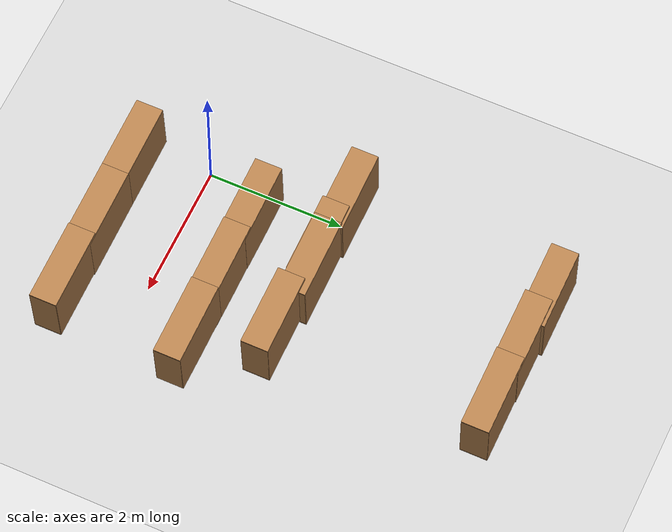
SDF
<sdf version="1.7">
 <world name="default">
  <model name="ground_plane">
   <static>1</static>
   <link name="link">
    <collision name="collision">
     <geometry><plane><normal>0 0 1</normal><size>100 100</size></plane></geometry>
     <surface>
      <contact><collide_bitmask>65535</collide_bitmask></contact>
      <friction><ode><mu>100</mu><mu2>50</mu2></ode></friction>
     </surface>
    </collision>
    <visual name="visual">
     <cast_shadows>0</cast_shadows>
     <geometry><plane><normal>0 0 1</normal><size>100 100</size></plane></geometry>
     <material>
      <script><uri>file://media/materials/scripts/gazebo.material</uri><name>Gazebo/Grey</name></script>
     </material>
    </visual>
   </link>
  </model>
  <model name="bookshelf">
   <static>1</static>
   <link name="link">
    <inertial><mass>1</mass></inertial>
    <collision name="back">
     <pose>0 0.005 0.6 0 -0 0</pose>
     <geometry><box><size>0.9 0.01 1.2</size></box></geometry>
    </collision>
    <visual name="visual1">
     <pose>0 0.005 0.6 0 -0 0</pose>
     <geometry><box><size>0.9 0.01 1.2</size></box></geometry>
     <material>
      <script><uri>file://media/materials/scripts/gazebo.material</uri><name>Gazebo/Wood</name></script>
     </material>
    </visual>
    <collision name="left_side">
     <pose>0.45 -0.195 0.6 0 -0 0</pose>
     <geometry><box><size>0.02 0.4 1.2</size></box></geometry>
    </collision>
    <visual name="visual2">
     <pose>0.45 -0.195 0.6 0 -0 0</pose>
     <geometry><box><size>0.02 0.4 1.2</size></box></geometry>
     <material>
      <script><uri>file://media/materials/scripts/gazebo.material</uri><name>Gazebo/Wood</name></script>
     </material>
    </visual>
    <collision name="right_side">
     <pose>-0.45 -0.195 0.6 0 -0 0</pose>
     <geometry><box><size>0.02 0.4 1.2</size></box></geometry>
    </collision>
    <visual name="visual3">
     <pose>-0.45 -0.195 0.6 0 -0 0</pose>
     <geometry><box><size>0.02 0.4 1.2</size></box></geometry>
     <material>
      <script><uri>file://media/materials/scripts/gazebo.material</uri><name>Gazebo/Wood</name></script>
     </material>
    </visual>
    <collision name="bottom">
     <pose>0 -0.195 0.03 0 -0 0</pose>
     <geometry><box><size>0.88 0.4 0.06</size></box></geometry>
    </collision>
    <visual name="visual4">
     <pose>0 -0.195 0.03 0 -0 0</pose>
     <geometry><box><size>0.88 0.4 0.06</size></box></geometry>
     <material>
      <script><uri>file://media/materials/scripts/gazebo.material</uri><name>Gazebo/Wood</name></script>
     </material>
    </visual>
    <collision name="top">
     <pose>0 -0.195 1.19 0 -0 0</pose>
     <geometry><box><size>0.88 0.4 0.02</size></box></geometry>
    </collision>
    <visual name="visual5">
     <pose>0 -0.195 1.19 0 -0 0</pose>
     <geometry><box><size>0.88 0.4 0.02</size></box></geometry>
     <material>
      <script><uri>file://media/materials/scripts/gazebo.material</uri><name>Gazebo/Wood</name></script>
     </material>
    </visual>
    <collision name="low_shelf">
     <pose>0 -0.195 0.43 0 -0 0</pose>
     <geometry><box><size>0.88 0.4 0.02</size></box></geometry>
    </collision>
    <visual name="visual6">
     <pose>0 -0.195 0.43 0 -0 0</pose>
     <geometry><box><size>0.88 0.4 0.02</size></box></geometry>
     <material>
      <script><uri>file://media/materials/scripts/gazebo.material</uri><name>Gazebo/Wood</name></script>
     </material>
    </visual>
    <collision name="high_shelf">
     <pose>0 -0.195 0.8 0 -0 0</pose>
     <geometry><box><size>0.88 0.4 0.02</size></box></geometry>
    </collision>
    <visual name="visual7">
     <pose>0 -0.195 0.8 0 -0 0</pose>
     <geometry><box><size>0.88 0.4 0.02</size></box></geometry>
     <material>
      <script><uri>file://media/materials/scripts/gazebo.material</uri><name>Gazebo/Wood</name></script>
     </material>
    </visual>
   </link>
   <pose>-0.039939 1.08937 0.469198 3.1373 1.52729 3.13696</pose>
  </model>
  <model name="bookshelf_clone_0">
   <static>1</static>
   <link name="link">
    <inertial><mass>1</mass></inertial>
    <collision name="back">
     <pose>0 0.005 0.6 0 -0 0</pose>
     <geometry><box><size>0.9 0.01 1.2</size></box></geometry>
    </collision>
    <visual name="visual1">
     <pose>0 0.005 0.6 0 -0 0</pose>
     <geometry><box><size>0.9 0.01 1.2</size></box></geometry>
     <material>
      <script><uri>file://media/materials/scripts/gazebo.material</uri><name>Gazebo/Wood</name></script>
     </material>
    </visual>
    <collision name="left_side">
     <pose>0.45 -0.195 0.6 0 -0 0</pose>
     <geometry><box><size>0.02 0.4 1.2</size></box></geometry>
    </collision>
    <visual name="visual2">
     <pose>0.45 -0.195 0.6 0 -0 0</pose>
     <geometry><box><size>0.02 0.4 1.2</size></box></geometry>
     <material>
      <script><uri>file://media/materials/scripts/gazebo.material</uri><name>Gazebo/Wood</name></script>
     </material>
    </visual>
    <collision name="right_side">
     <pose>-0.45 -0.195 0.6 0 -0 0</pose>
     <geometry><box><size>0.02 0.4 1.2</size></box></geometry>
    </collision>
    <visual name="visual3">
     <pose>-0.45 -0.195 0.6 0 -0 0</pose>
     <geometry><box><size>0.02 0.4 1.2</size></box></geometry>
     <material>
      <script><uri>file://media/materials/scripts/gazebo.material</uri><name>Gazebo/Wood</name></script>
     </material>
    </visual>
    <collision name="bottom">
     <pose>0 -0.195 0.03 0 -0 0</pose>
     <geometry><box><size>0.88 0.4 0.06</size></box></geometry>
    </collision>
    <visual name="visual4">
     <pose>0 -0.195 0.03 0 -0 0</pose>
     <geometry><box><size>0.88 0.4 0.06</size></box></geometry>
     <material>
      <script><uri>file://media/materials/scripts/gazebo.material</uri><name>Gazebo/Wood</name></script>
     </material>
    </visual>
    <collision name="top">
     <pose>0 -0.195 1.19 0 -0 0</pose>
     <geometry><box><size>0.88 0.4 0.02</size></box></geometry>
    </collision>
    <visual name="visual5">
     <pose>0 -0.195 1.19 0 -0 0</pose>
     <geometry><box><size>0.88 0.4 0.02</size></box></geometry>
     <material>
      <script><uri>file://media/materials/scripts/gazebo.material</uri><name>Gazebo/Wood</name></script>
     </material>
    </visual>
    <collision name="low_shelf">
     <pose>0 -0.195 0.43 0 -0 0</pose>
     <geometry><box><size>0.88 0.4 0.02</size></box></geometry>
    </collision>
    <visual name="visual6">
     <pose>0 -0.195 0.43 0 -0 0</pose>
     <geometry><box><size>0.88 0.4 0.02</size></box></geometry>
     <material>
      <script><uri>file://media/materials/scripts/gazebo.material</uri><name>Gazebo/Wood</name></script>
     </material>
    </visual>
    <collision name="high_shelf">
     <pose>0 -0.195 0.8 0 -0 0</pose>
     <geometry><box><size>0.88 0.4 0.02</size></box></geometry>
    </collision>
    <visual name="visual7">
     <pose>0 -0.195 0.8 0 -0 0</pose>
     <geometry><box><size>0.88 0.4 0.02</size></box></geometry>
     <material>
      <script><uri>file://media/materials/scripts/gazebo.material</uri><name>Gazebo/Wood</name></script>
     </material>
    </visual>
   </link>
   <pose>0.971842 1.08817 0.469198 3.1373 1.52729 3.13696</pose>
  </model>
  <model name="bookshelf_clone_1">
   <static>1</static>
   <link name="link">
    <inertial><mass>1</mass></inertial>
    <collision name="back">
     <pose>0 0.005 0.6 0 -0 0</pose>
     <geometry><box><size>0.9 0.01 1.2</size></box></geometry>
    </collision>
    <visual name="visual1">
     <pose>0 0.005 0.6 0 -0 0</pose>
     <geometry><box><size>0.9 0.01 1.2</size></box></geometry>
     <material>
      <script><uri>file://media/materials/scripts/gazebo.material</uri><name>Gazebo/Wood</name></script>
     </material>
    </visual>
    <collision name="left_side">
     <pose>0.45 -0.195 0.6 0 -0 0</pose>
     <geometry><box><size>0.02 0.4 1.2</size></box></geometry>
    </collision>
    <visual name="visual2">
     <pose>0.45 -0.195 0.6 0 -0 0</pose>
     <geometry><box><size>0.02 0.4 1.2</size></box></geometry>
     <material>
      <script><uri>file://media/materials/scripts/gazebo.material</uri><name>Gazebo/Wood</name></script>
     </material>
    </visual>
    <collision name="right_side">
     <pose>-0.45 -0.195 0.6 0 -0 0</pose>
     <geometry><box><size>0.02 0.4 1.2</size></box></geometry>
    </collision>
    <visual name="visual3">
     <pose>-0.45 -0.195 0.6 0 -0 0</pose>
     <geometry><box><size>0.02 0.4 1.2</size></box></geometry>
     <material>
      <script><uri>file://media/materials/scripts/gazebo.material</uri><name>Gazebo/Wood</name></script>
     </material>
    </visual>
    <collision name="bottom">
     <pose>0 -0.195 0.03 0 -0 0</pose>
     <geometry><box><size>0.88 0.4 0.06</size></box></geometry>
    </collision>
    <visual name="visual4">
     <pose>0 -0.195 0.03 0 -0 0</pose>
     <geometry><box><size>0.88 0.4 0.06</size></box></geometry>
     <material>
      <script><uri>file://media/materials/scripts/gazebo.material</uri><name>Gazebo/Wood</name></script>
     </material>
    </visual>
    <collision name="top">
     <pose>0 -0.195 1.19 0 -0 0</pose>
     <geometry><box><size>0.88 0.4 0.02</size></box></geometry>
    </collision>
    <visual name="visual5">
     <pose>0 -0.195 1.19 0 -0 0</pose>
     <geometry><box><size>0.88 0.4 0.02</size></box></geometry>
     <material>
      <script><uri>file://media/materials/scripts/gazebo.material</uri><name>Gazebo/Wood</name></script>
     </material>
    </visual>
    <collision name="low_shelf">
     <pose>0 -0.195 0.43 0 -0 0</pose>
     <geometry><box><size>0.88 0.4 0.02</size></box></geometry>
    </collision>
    <visual name="visual6">
     <pose>0 -0.195 0.43 0 -0 0</pose>
     <geometry><box><size>0.88 0.4 0.02</size></box></geometry>
     <material>
      <script><uri>file://media/materials/scripts/gazebo.material</uri><name>Gazebo/Wood</name></script>
     </material>
    </visual>
    <collision name="high_shelf">
     <pose>0 -0.195 0.8 0 -0 0</pose>
     <geometry><box><size>0.88 0.4 0.02</size></box></geometry>
    </collision>
    <visual name="visual7">
     <pose>0 -0.195 0.8 0 -0 0</pose>
     <geometry><box><size>0.88 0.4 0.02</size></box></geometry>
     <material>
      <script><uri>file://media/materials/scripts/gazebo.material</uri><name>Gazebo/Wood</name></script>
     </material>
    </visual>
   </link>
   <pose>1.99977 1.08853 0.469198 3.1373 1.52729 3.13696</pose>
  </model>
  <model name="bookshelf_clone_clone_clone">
   <static>1</static>
   <link name="link">
    <inertial><mass>1</mass></inertial>
    <collision name="back">
     <pose>0 0.005 0.6 0 -0 0</pose>
     <geometry><box><size>0.9 0.01 1.2</size></box></geometry>
    </collision>
    <visual name="visual1">
     <pose>0 0.005 0.6 0 -0 0</pose>
     <geometry><box><size>0.9 0.01 1.2</size></box></geometry>
     <material>
      <script><uri>file://media/materials/scripts/gazebo.material</uri><name>Gazebo/Wood</name></script>
     </material>
    </visual>
    <collision name="left_side">
     <pose>0.45 -0.195 0.6 0 -0 0</pose>
     <geometry><box><size>0.02 0.4 1.2</size></box></geometry>
    </collision>
    <visual name="visual2">
     <pose>0.45 -0.195 0.6 0 -0 0</pose>
     <geometry><box><size>0.02 0.4 1.2</size></box></geometry>
     <material>
      <script><uri>file://media/materials/scripts/gazebo.material</uri><name>Gazebo/Wood</name></script>
     </material>
    </visual>
    <collision name="right_side">
     <pose>-0.45 -0.195 0.6 0 -0 0</pose>
     <geometry><box><size>0.02 0.4 1.2</size></box></geometry>
    </collision>
    <visual name="visual3">
     <pose>-0.45 -0.195 0.6 0 -0 0</pose>
     <geometry><box><size>0.02 0.4 1.2</size></box></geometry>
     <material>
      <script><uri>file://media/materials/scripts/gazebo.material</uri><name>Gazebo/Wood</name></script>
     </material>
    </visual>
    <collision name="bottom">
     <pose>0 -0.195 0.03 0 -0 0</pose>
     <geometry><box><size>0.88 0.4 0.06</size></box></geometry>
    </collision>
    <visual name="visual4">
     <pose>0 -0.195 0.03 0 -0 0</pose>
     <geometry><box><size>0.88 0.4 0.06</size></box></geometry>
     <material>
      <script><uri>file://media/materials/scripts/gazebo.material</uri><name>Gazebo/Wood</name></script>
     </material>
    </visual>
    <collision name="top">
     <pose>0 -0.195 1.19 0 -0 0</pose>
     <geometry><box><size>0.88 0.4 0.02</size></box></geometry>
    </collision>
    <visual name="visual5">
     <pose>0 -0.195 1.19 0 -0 0</pose>
     <geometry><box><size>0.88 0.4 0.02</size></box></geometry>
     <material>
      <script><uri>file://media/materials/scripts/gazebo.material</uri><name>Gazebo/Wood</name></script>
     </material>
    </visual>
    <collision name="low_shelf">
     <pose>0 -0.195 0.43 0 -0 0</pose>
     <geometry><box><size>0.88 0.4 0.02</size></box></geometry>
    </collision>
    <visual name="visual6">
     <pose>0 -0.195 0.43 0 -0 0</pose>
     <geometry><box><size>0.88 0.4 0.02</size></box></geometry>
     <material>
      <script><uri>file://media/materials/scripts/gazebo.material</uri><name>Gazebo/Wood</name></script>
     </material>
    </visual>
    <collision name="high_shelf">
     <pose>0 -0.195 0.8 0 -0 0</pose>
     <geometry><box><size>0.88 0.4 0.02</size></box></geometry>
    </collision>
    <visual name="visual7">
     <pose>0 -0.195 0.8 0 -0 0</pose>
     <geometry><box><size>0.88 0.4 0.02</size></box></geometry>
     <material>
      <script><uri>file://media/materials/scripts/gazebo.material</uri><name>Gazebo/Wood</name></script>
     </material>
    </visual>
   </link>
   <pose>-0.171859 -0.788269 0.531222 3.1373 1.52729 3.13696</pose>
  </model>
  <model name="bookshelf_clone_clone_clone_0">
   <static>1</static>
   <link name="link">
    <inertial><mass>1</mass></inertial>
    <collision name="back">
     <pose>0 0.005 0.6 0 -0 0</pose>
     <geometry><box><size>0.9 0.01 1.2</size></box></geometry>
    </collision>
    <visual name="visual1">
     <pose>0 0.005 0.6 0 -0 0</pose>
     <geometry><box><size>0.9 0.01 1.2</size></box></geometry>
     <material>
      <script><uri>file://media/materials/scripts/gazebo.material</uri><name>Gazebo/Wood</name></script>
     </material>
    </visual>
    <collision name="left_side">
     <pose>0.45 -0.195 0.6 0 -0 0</pose>
     <geometry><box><size>0.02 0.4 1.2</size></box></geometry>
    </collision>
    <visual name="visual2">
     <pose>0.45 -0.195 0.6 0 -0 0</pose>
     <geometry><box><size>0.02 0.4 1.2</size></box></geometry>
     <material>
      <script><uri>file://media/materials/scripts/gazebo.material</uri><name>Gazebo/Wood</name></script>
     </material>
    </visual>
    <collision name="right_side">
     <pose>-0.45 -0.195 0.6 0 -0 0</pose>
     <geometry><box><size>0.02 0.4 1.2</size></box></geometry>
    </collision>
    <visual name="visual3">
     <pose>-0.45 -0.195 0.6 0 -0 0</pose>
     <geometry><box><size>0.02 0.4 1.2</size></box></geometry>
     <material>
      <script><uri>file://media/materials/scripts/gazebo.material</uri><name>Gazebo/Wood</name></script>
     </material>
    </visual>
    <collision name="bottom">
     <pose>0 -0.195 0.03 0 -0 0</pose>
     <geometry><box><size>0.88 0.4 0.06</size></box></geometry>
    </collision>
    <visual name="visual4">
     <pose>0 -0.195 0.03 0 -0 0</pose>
     <geometry><box><size>0.88 0.4 0.06</size></box></geometry>
     <material>
      <script><uri>file://media/materials/scripts/gazebo.material</uri><name>Gazebo/Wood</name></script>
     </material>
    </visual>
    <collision name="top">
     <pose>0 -0.195 1.19 0 -0 0</pose>
     <geometry><box><size>0.88 0.4 0.02</size></box></geometry>
    </collision>
    <visual name="visual5">
     <pose>0 -0.195 1.19 0 -0 0</pose>
     <geometry><box><size>0.88 0.4 0.02</size></box></geometry>
     <material>
      <script><uri>file://media/materials/scripts/gazebo.material</uri><name>Gazebo/Wood</name></script>
     </material>
    </visual>
    <collision name="low_shelf">
     <pose>0 -0.195 0.43 0 -0 0</pose>
     <geometry><box><size>0.88 0.4 0.02</size></box></geometry>
    </collision>
    <visual name="visual6">
     <pose>0 -0.195 0.43 0 -0 0</pose>
     <geometry><box><size>0.88 0.4 0.02</size></box></geometry>
     <material>
      <script><uri>file://media/materials/scripts/gazebo.material</uri><name>Gazebo/Wood</name></script>
     </material>
    </visual>
    <collision name="high_shelf">
     <pose>0 -0.195 0.8 0 -0 0</pose>
     <geometry><box><size>0.88 0.4 0.02</size></box></geometry>
    </collision>
    <visual name="visual7">
     <pose>0 -0.195 0.8 0 -0 0</pose>
     <geometry><box><size>0.88 0.4 0.02</size></box></geometry>
     <material>
      <script><uri>file://media/materials/scripts/gazebo.material</uri><name>Gazebo/Wood</name></script>
     </material>
    </visual>
   </link>
   <pose>0.938619 -0.774846 0.531222 3.1373 1.52729 3.13696</pose>
  </model>
  <model name="bookshelf_clone_clone_clone_1">
   <static>1</static>
   <link name="link">
    <inertial><mass>1</mass></inertial>
    <collision name="back">
     <pose>0 0.005 0.6 0 -0 0</pose>
     <geometry><box><size>0.9 0.01 1.2</size></box></geometry>
    </collision>
    <visual name="visual1">
     <pose>0 0.005 0.6 0 -0 0</pose>
     <geometry><box><size>0.9 0.01 1.2</size></box></geometry>
     <material>
      <script><uri>file://media/materials/scripts/gazebo.material</uri><name>Gazebo/Wood</name></script>
     </material>
    </visual>
    <collision name="left_side">
     <pose>0.45 -0.195 0.6 0 -0 0</pose>
     <geometry><box><size>0.02 0.4 1.2</size></box></geometry>
    </collision>
    <visual name="visual2">
     <pose>0.45 -0.195 0.6 0 -0 0</pose>
     <geometry><box><size>0.02 0.4 1.2</size></box></geometry>
     <material>
      <script><uri>file://media/materials/scripts/gazebo.material</uri><name>Gazebo/Wood</name></script>
     </material>
    </visual>
    <collision name="right_side">
     <pose>-0.45 -0.195 0.6 0 -0 0</pose>
     <geometry><box><size>0.02 0.4 1.2</size></box></geometry>
    </collision>
    <visual name="visual3">
     <pose>-0.45 -0.195 0.6 0 -0 0</pose>
     <geometry><box><size>0.02 0.4 1.2</size></box></geometry>
     <material>
      <script><uri>file://media/materials/scripts/gazebo.material</uri><name>Gazebo/Wood</name></script>
     </material>
    </visual>
    <collision name="bottom">
     <pose>0 -0.195 0.03 0 -0 0</pose>
     <geometry><box><size>0.88 0.4 0.06</size></box></geometry>
    </collision>
    <visual name="visual4">
     <pose>0 -0.195 0.03 0 -0 0</pose>
     <geometry><box><size>0.88 0.4 0.06</size></box></geometry>
     <material>
      <script><uri>file://media/materials/scripts/gazebo.material</uri><name>Gazebo/Wood</name></script>
     </material>
    </visual>
    <collision name="top">
     <pose>0 -0.195 1.19 0 -0 0</pose>
     <geometry><box><size>0.88 0.4 0.02</size></box></geometry>
    </collision>
    <visual name="visual5">
     <pose>0 -0.195 1.19 0 -0 0</pose>
     <geometry><box><size>0.88 0.4 0.02</size></box></geometry>
     <material>
      <script><uri>file://media/materials/scripts/gazebo.material</uri><name>Gazebo/Wood</name></script>
     </material>
    </visual>
    <collision name="low_shelf">
     <pose>0 -0.195 0.43 0 -0 0</pose>
     <geometry><box><size>0.88 0.4 0.02</size></box></geometry>
    </collision>
    <visual name="visual6">
     <pose>0 -0.195 0.43 0 -0 0</pose>
     <geometry><box><size>0.88 0.4 0.02</size></box></geometry>
     <material>
      <script><uri>file://media/materials/scripts/gazebo.material</uri><name>Gazebo/Wood</name></script>
     </material>
    </visual>
    <collision name="high_shelf">
     <pose>0 -0.195 0.8 0 -0 0</pose>
     <geometry><box><size>0.88 0.4 0.02</size></box></geometry>
    </collision>
    <visual name="visual7">
     <pose>0 -0.195 0.8 0 -0 0</pose>
     <geometry><box><size>0.88 0.4 0.02</size></box></geometry>
     <material>
      <script><uri>file://media/materials/scripts/gazebo.material</uri><name>Gazebo/Wood</name></script>
     </material>
    </visual>
   </link>
   <pose>1.97036 -0.775682 0.531222 3.1373 1.52729 3.13696</pose>
  </model>
  <model name="bookshelf_clone_clone_clone_4_clone_5_clone_1">
   <static>1</static>
   <link name="link">
    <inertial><mass>1</mass></inertial>
    <collision name="back">
     <pose>0 0.005 0.6 0 -0 0</pose>
     <geometry><box><size>0.9 0.01 1.2</size></box></geometry>
    </collision>
    <visual name="visual1">
     <pose>0 0.005 0.6 0 -0 0</pose>
     <geometry><box><size>0.9 0.01 1.2</size></box></geometry>
     <material>
      <script><uri>file://media/materials/scripts/gazebo.material</uri><name>Gazebo/Wood</name></script>
     </material>
    </visual>
    <collision name="left_side">
     <pose>0.45 -0.195 0.6 0 -0 0</pose>
     <geometry><box><size>0.02 0.4 1.2</size></box></geometry>
    </collision>
    <visual name="visual2">
     <pose>0.45 -0.195 0.6 0 -0 0</pose>
     <geometry><box><size>0.02 0.4 1.2</size></box></geometry>
     <material>
      <script><uri>file://media/materials/scripts/gazebo.material</uri><name>Gazebo/Wood</name></script>
     </material>
    </visual>
    <collision name="right_side">
     <pose>-0.45 -0.195 0.6 0 -0 0</pose>
     <geometry><box><size>0.02 0.4 1.2</size></box></geometry>
    </collision>
    <visual name="visual3">
     <pose>-0.45 -0.195 0.6 0 -0 0</pose>
     <geometry><box><size>0.02 0.4 1.2</size></box></geometry>
     <material>
      <script><uri>file://media/materials/scripts/gazebo.material</uri><name>Gazebo/Wood</name></script>
     </material>
    </visual>
    <collision name="bottom">
     <pose>0 -0.195 0.03 0 -0 0</pose>
     <geometry><box><size>0.88 0.4 0.06</size></box></geometry>
    </collision>
    <visual name="visual4">
     <pose>0 -0.195 0.03 0 -0 0</pose>
     <geometry><box><size>0.88 0.4 0.06</size></box></geometry>
     <material>
      <script><uri>file://media/materials/scripts/gazebo.material</uri><name>Gazebo/Wood</name></script>
     </material>
    </visual>
    <collision name="top">
     <pose>0 -0.195 1.19 0 -0 0</pose>
     <geometry><box><size>0.88 0.4 0.02</size></box></geometry>
    </collision>
    <visual name="visual5">
     <pose>0 -0.195 1.19 0 -0 0</pose>
     <geometry><box><size>0.88 0.4 0.02</size></box></geometry>
     <material>
      <script><uri>file://media/materials/scripts/gazebo.material</uri><name>Gazebo/Wood</name></script>
     </material>
    </visual>
    <collision name="low_shelf">
     <pose>0 -0.195 0.43 0 -0 0</pose>
     <geometry><box><size>0.88 0.4 0.02</size></box></geometry>
    </collision>
    <visual name="visual6">
     <pose>0 -0.195 0.43 0 -0 0</pose>
     <geometry><box><size>0.88 0.4 0.02</size></box></geometry>
     <material>
      <script><uri>file://media/materials/scripts/gazebo.material</uri><name>Gazebo/Wood</name></script>
     </material>
    </visual>
    <collision name="high_shelf">
     <pose>0 -0.195 0.8 0 -0 0</pose>
     <geometry><box><size>0.88 0.4 0.02</size></box></geometry>
    </collision>
    <visual name="visual7">
     <pose>0 -0.195 0.8 0 -0 0</pose>
     <geometry><box><size>0.88 0.4 0.02</size></box></geometry>
     <material>
      <script><uri>file://media/materials/scripts/gazebo.material</uri><name>Gazebo/Wood</name></script>
     </material>
    </visual>
   </link>
   <pose>1.29215 5.26956 0.531222 3.1373 1.52729 3.13696</pose>
  </model>
  <model name="bookshelf_clone_clone_clone_4_clone_5_clone_2">
   <static>1</static>
   <link name="link">
    <inertial><mass>1</mass></inertial>
    <collision name="back">
     <pose>0 0.005 0.6 0 -0 0</pose>
     <geometry><box><size>0.9 0.01 1.2</size></box></geometry>
    </collision>
    <visual name="visual1">
     <pose>0 0.005 0.6 0 -0 0</pose>
     <geometry><box><size>0.9 0.01 1.2</size></box></geometry>
     <material>
      <script><uri>file://media/materials/scripts/gazebo.material</uri><name>Gazebo/Wood</name></script>
     </material>
    </visual>
    <collision name="left_side">
     <pose>0.45 -0.195 0.6 0 -0 0</pose>
     <geometry><box><size>0.02 0.4 1.2</size></box></geometry>
    </collision>
    <visual name="visual2">
     <pose>0.45 -0.195 0.6 0 -0 0</pose>
     <geometry><box><size>0.02 0.4 1.2</size></box></geometry>
     <material>
      <script><uri>file://media/materials/scripts/gazebo.material</uri><name>Gazebo/Wood</name></script>
     </material>
    </visual>
    <collision name="right_side">
     <pose>-0.45 -0.195 0.6 0 -0 0</pose>
     <geometry><box><size>0.02 0.4 1.2</size></box></geometry>
    </collision>
    <visual name="visual3">
     <pose>-0.45 -0.195 0.6 0 -0 0</pose>
     <geometry><box><size>0.02 0.4 1.2</size></box></geometry>
     <material>
      <script><uri>file://media/materials/scripts/gazebo.material</uri><name>Gazebo/Wood</name></script>
     </material>
    </visual>
    <collision name="bottom">
     <pose>0 -0.195 0.03 0 -0 0</pose>
     <geometry><box><size>0.88 0.4 0.06</size></box></geometry>
    </collision>
    <visual name="visual4">
     <pose>0 -0.195 0.03 0 -0 0</pose>
     <geometry><box><size>0.88 0.4 0.06</size></box></geometry>
     <material>
      <script><uri>file://media/materials/scripts/gazebo.material</uri><name>Gazebo/Wood</name></script>
     </material>
    </visual>
    <collision name="top">
     <pose>0 -0.195 1.19 0 -0 0</pose>
     <geometry><box><size>0.88 0.4 0.02</size></box></geometry>
    </collision>
    <visual name="visual5">
     <pose>0 -0.195 1.19 0 -0 0</pose>
     <geometry><box><size>0.88 0.4 0.02</size></box></geometry>
     <material>
      <script><uri>file://media/materials/scripts/gazebo.material</uri><name>Gazebo/Wood</name></script>
     </material>
    </visual>
    <collision name="low_shelf">
     <pose>0 -0.195 0.43 0 -0 0</pose>
     <geometry><box><size>0.88 0.4 0.02</size></box></geometry>
    </collision>
    <visual name="visual6">
     <pose>0 -0.195 0.43 0 -0 0</pose>
     <geometry><box><size>0.88 0.4 0.02</size></box></geometry>
     <material>
      <script><uri>file://media/materials/scripts/gazebo.material</uri><name>Gazebo/Wood</name></script>
     </material>
    </visual>
    <collision name="high_shelf">
     <pose>0 -0.195 0.8 0 -0 0</pose>
     <geometry><box><size>0.88 0.4 0.02</size></box></geometry>
    </collision>
    <visual name="visual7">
     <pose>0 -0.195 0.8 0 -0 0</pose>
     <geometry><box><size>0.88 0.4 0.02</size></box></geometry>
     <material>
      <script><uri>file://media/materials/scripts/gazebo.material</uri><name>Gazebo/Wood</name></script>
     </material>
    </visual>
   </link>
   <pose>0.330227 5.27536 0.531222 3.1373 1.52729 3.13696</pose>
  </model>
  <model name="bookshelf_clone_clone_clone_4_clone_5_clone_3">
   <static>1</static>
   <link name="link">
    <inertial><mass>1</mass></inertial>
    <collision name="back">
     <pose>0 0.005 0.6 0 -0 0</pose>
     <geometry><box><size>0.9 0.01 1.2</size></box></geometry>
    </collision>
    <visual name="visual1">
     <pose>0 0.005 0.6 0 -0 0</pose>
     <geometry><box><size>0.9 0.01 1.2</size></box></geometry>
     <material>
      <script><uri>file://media/materials/scripts/gazebo.material</uri><name>Gazebo/Wood</name></script>
     </material>
    </visual>
    <collision name="left_side">
     <pose>0.45 -0.195 0.6 0 -0 0</pose>
     <geometry><box><size>0.02 0.4 1.2</size></box></geometry>
    </collision>
    <visual name="visual2">
     <pose>0.45 -0.195 0.6 0 -0 0</pose>
     <geometry><box><size>0.02 0.4 1.2</size></box></geometry>
     <material>
      <script><uri>file://media/materials/scripts/gazebo.material</uri><name>Gazebo/Wood</name></script>
     </material>
    </visual>
    <collision name="right_side">
     <pose>-0.45 -0.195 0.6 0 -0 0</pose>
     <geometry><box><size>0.02 0.4 1.2</size></box></geometry>
    </collision>
    <visual name="visual3">
     <pose>-0.45 -0.195 0.6 0 -0 0</pose>
     <geometry><box><size>0.02 0.4 1.2</size></box></geometry>
     <material>
      <script><uri>file://media/materials/scripts/gazebo.material</uri><name>Gazebo/Wood</name></script>
     </material>
    </visual>
    <collision name="bottom">
     <pose>0 -0.195 0.03 0 -0 0</pose>
     <geometry><box><size>0.88 0.4 0.06</size></box></geometry>
    </collision>
    <visual name="visual4">
     <pose>0 -0.195 0.03 0 -0 0</pose>
     <geometry><box><size>0.88 0.4 0.06</size></box></geometry>
     <material>
      <script><uri>file://media/materials/scripts/gazebo.material</uri><name>Gazebo/Wood</name></script>
     </material>
    </visual>
    <collision name="top">
     <pose>0 -0.195 1.19 0 -0 0</pose>
     <geometry><box><size>0.88 0.4 0.02</size></box></geometry>
    </collision>
    <visual name="visual5">
     <pose>0 -0.195 1.19 0 -0 0</pose>
     <geometry><box><size>0.88 0.4 0.02</size></box></geometry>
     <material>
      <script><uri>file://media/materials/scripts/gazebo.material</uri><name>Gazebo/Wood</name></script>
     </material>
    </visual>
    <collision name="low_shelf">
     <pose>0 -0.195 0.43 0 -0 0</pose>
     <geometry><box><size>0.88 0.4 0.02</size></box></geometry>
    </collision>
    <visual name="visual6">
     <pose>0 -0.195 0.43 0 -0 0</pose>
     <geometry><box><size>0.88 0.4 0.02</size></box></geometry>
     <material>
      <script><uri>file://media/materials/scripts/gazebo.material</uri><name>Gazebo/Wood</name></script>
     </material>
    </visual>
    <collision name="high_shelf">
     <pose>0 -0.195 0.8 0 -0 0</pose>
     <geometry><box><size>0.88 0.4 0.02</size></box></geometry>
    </collision>
    <visual name="visual7">
     <pose>0 -0.195 0.8 0 -0 0</pose>
     <geometry><box><size>0.88 0.4 0.02</size></box></geometry>
     <material>
      <script><uri>file://media/materials/scripts/gazebo.material</uri><name>Gazebo/Wood</name></script>
     </material>
    </visual>
   </link>
   <pose>-0.474148 5.32165 0.531222 3.1373 1.52729 3.13696</pose>
  </model>
  <model name="bookshelf_clone_clone_clone_4_clone_5_clone_9">
   <static>1</static>
   <link name="link">
    <inertial><mass>1</mass></inertial>
    <collision name="back">
     <pose>0 0.005 0.6 0 -0 0</pose>
     <geometry><box><size>0.9 0.01 1.2</size></box></geometry>
    </collision>
    <visual name="visual1">
     <pose>0 0.005 0.6 0 -0 0</pose>
     <geometry><box><size>0.9 0.01 1.2</size></box></geometry>
     <material>
      <script><uri>file://media/materials/scripts/gazebo.material</uri><name>Gazebo/Wood</name></script>
     </material>
    </visual>
    <collision name="left_side">
     <pose>0.45 -0.195 0.6 0 -0 0</pose>
     <geometry><box><size>0.02 0.4 1.2</size></box></geometry>
    </collision>
    <visual name="visual2">
     <pose>0.45 -0.195 0.6 0 -0 0</pose>
     <geometry><box><size>0.02 0.4 1.2</size></box></geometry>
     <material>
      <script><uri>file://media/materials/scripts/gazebo.material</uri><name>Gazebo/Wood</name></script>
     </material>
    </visual>
    <collision name="right_side">
     <pose>-0.45 -0.195 0.6 0 -0 0</pose>
     <geometry><box><size>0.02 0.4 1.2</size></box></geometry>
    </collision>
    <visual name="visual3">
     <pose>-0.45 -0.195 0.6 0 -0 0</pose>
     <geometry><box><size>0.02 0.4 1.2</size></box></geometry>
     <material>
      <script><uri>file://media/materials/scripts/gazebo.material</uri><name>Gazebo/Wood</name></script>
     </material>
    </visual>
    <collision name="bottom">
     <pose>0 -0.195 0.03 0 -0 0</pose>
     <geometry><box><size>0.88 0.4 0.06</size></box></geometry>
    </collision>
    <visual name="visual4">
     <pose>0 -0.195 0.03 0 -0 0</pose>
     <geometry><box><size>0.88 0.4 0.06</size></box></geometry>
     <material>
      <script><uri>file://media/materials/scripts/gazebo.material</uri><name>Gazebo/Wood</name></script>
     </material>
    </visual>
    <collision name="top">
     <pose>0 -0.195 1.19 0 -0 0</pose>
     <geometry><box><size>0.88 0.4 0.02</size></box></geometry>
    </collision>
    <visual name="visual5">
     <pose>0 -0.195 1.19 0 -0 0</pose>
     <geometry><box><size>0.88 0.4 0.02</size></box></geometry>
     <material>
      <script><uri>file://media/materials/scripts/gazebo.material</uri><name>Gazebo/Wood</name></script>
     </material>
    </visual>
    <collision name="low_shelf">
     <pose>0 -0.195 0.43 0 -0 0</pose>
     <geometry><box><size>0.88 0.4 0.02</size></box></geometry>
    </collision>
    <visual name="visual6">
     <pose>0 -0.195 0.43 0 -0 0</pose>
     <geometry><box><size>0.88 0.4 0.02</size></box></geometry>
     <material>
      <script><uri>file://media/materials/scripts/gazebo.material</uri><name>Gazebo/Wood</name></script>
     </material>
    </visual>
    <collision name="high_shelf">
     <pose>0 -0.195 0.8 0 -0 0</pose>
     <geometry><box><size>0.88 0.4 0.02</size></box></geometry>
    </collision>
    <visual name="visual7">
     <pose>0 -0.195 0.8 0 -0 0</pose>
     <geometry><box><size>0.88 0.4 0.02</size></box></geometry>
     <material>
      <script><uri>file://media/materials/scripts/gazebo.material</uri><name>Gazebo/Wood</name></script>
     </material>
    </visual>
   </link>
   <pose>1.41444 2.10726 0.531222 3.1373 1.52729 3.13696</pose>
  </model>
  <model name="bookshelf_clone_clone_clone_4_clone_5_clone_10">
   <static>1</static>
   <link name="link">
    <inertial><mass>1</mass></inertial>
    <collision name="back">
     <pose>0 0.005 0.6 0 -0 0</pose>
     <geometry><box><size>0.9 0.01 1.2</size></box></geometry>
    </collision>
    <visual name="visual1">
     <pose>0 0.005 0.6 0 -0 0</pose>
     <geometry><box><size>0.9 0.01 1.2</size></box></geometry>
     <material>
      <script><uri>file://media/materials/scripts/gazebo.material</uri><name>Gazebo/Wood</name></script>
     </material>
    </visual>
    <collision name="left_side">
     <pose>0.45 -0.195 0.6 0 -0 0</pose>
     <geometry><box><size>0.02 0.4 1.2</size></box></geometry>
    </collision>
    <visual name="visual2">
     <pose>0.45 -0.195 0.6 0 -0 0</pose>
     <geometry><box><size>0.02 0.4 1.2</size></box></geometry>
     <material>
      <script><uri>file://media/materials/scripts/gazebo.material</uri><name>Gazebo/Wood</name></script>
     </material>
    </visual>
    <collision name="right_side">
     <pose>-0.45 -0.195 0.6 0 -0 0</pose>
     <geometry><box><size>0.02 0.4 1.2</size></box></geometry>
    </collision>
    <visual name="visual3">
     <pose>-0.45 -0.195 0.6 0 -0 0</pose>
     <geometry><box><size>0.02 0.4 1.2</size></box></geometry>
     <material>
      <script><uri>file://media/materials/scripts/gazebo.material</uri><name>Gazebo/Wood</name></script>
     </material>
    </visual>
    <collision name="bottom">
     <pose>0 -0.195 0.03 0 -0 0</pose>
     <geometry><box><size>0.88 0.4 0.06</size></box></geometry>
    </collision>
    <visual name="visual4">
     <pose>0 -0.195 0.03 0 -0 0</pose>
     <geometry><box><size>0.88 0.4 0.06</size></box></geometry>
     <material>
      <script><uri>file://media/materials/scripts/gazebo.material</uri><name>Gazebo/Wood</name></script>
     </material>
    </visual>
    <collision name="top">
     <pose>0 -0.195 1.19 0 -0 0</pose>
     <geometry><box><size>0.88 0.4 0.02</size></box></geometry>
    </collision>
    <visual name="visual5">
     <pose>0 -0.195 1.19 0 -0 0</pose>
     <geometry><box><size>0.88 0.4 0.02</size></box></geometry>
     <material>
      <script><uri>file://media/materials/scripts/gazebo.material</uri><name>Gazebo/Wood</name></script>
     </material>
    </visual>
    <collision name="low_shelf">
     <pose>0 -0.195 0.43 0 -0 0</pose>
     <geometry><box><size>0.88 0.4 0.02</size></box></geometry>
    </collision>
    <visual name="visual6">
     <pose>0 -0.195 0.43 0 -0 0</pose>
     <geometry><box><size>0.88 0.4 0.02</size></box></geometry>
     <material>
      <script><uri>file://media/materials/scripts/gazebo.material</uri><name>Gazebo/Wood</name></script>
     </material>
    </visual>
    <collision name="high_shelf">
     <pose>0 -0.195 0.8 0 -0 0</pose>
     <geometry><box><size>0.88 0.4 0.02</size></box></geometry>
    </collision>
    <visual name="visual7">
     <pose>0 -0.195 0.8 0 -0 0</pose>
     <geometry><box><size>0.88 0.4 0.02</size></box></geometry>
     <material>
      <script><uri>file://media/materials/scripts/gazebo.material</uri><name>Gazebo/Wood</name></script>
     </material>
    </visual>
   </link>
   <pose>0.14195 2.19203 0.531222 3.1373 1.52729 3.13696</pose>
  </model>
  <model name="bookshelf_clone_clone_clone_4_clone_5_clone_11">
   <static>1</static>
   <link name="link">
    <inertial><mass>1</mass></inertial>
    <collision name="back">
     <pose>0 0.005 0.6 0 -0 0</pose>
     <geometry><box><size>0.9 0.01 1.2</size></box></geometry>
    </collision>
    <visual name="visual1">
     <pose>0 0.005 0.6 0 -0 0</pose>
     <geometry><box><size>0.9 0.01 1.2</size></box></geometry>
     <material>
      <script><uri>file://media/materials/scripts/gazebo.material</uri><name>Gazebo/Wood</name></script>
     </material>
    </visual>
    <collision name="left_side">
     <pose>0.45 -0.195 0.6 0 -0 0</pose>
     <geometry><box><size>0.02 0.4 1.2</size></box></geometry>
    </collision>
    <visual name="visual2">
     <pose>0.45 -0.195 0.6 0 -0 0</pose>
     <geometry><box><size>0.02 0.4 1.2</size></box></geometry>
     <material>
      <script><uri>file://media/materials/scripts/gazebo.material</uri><name>Gazebo/Wood</name></script>
     </material>
    </visual>
    <collision name="right_side">
     <pose>-0.45 -0.195 0.6 0 -0 0</pose>
     <geometry><box><size>0.02 0.4 1.2</size></box></geometry>
    </collision>
    <visual name="visual3">
     <pose>-0.45 -0.195 0.6 0 -0 0</pose>
     <geometry><box><size>0.02 0.4 1.2</size></box></geometry>
     <material>
      <script><uri>file://media/materials/scripts/gazebo.material</uri><name>Gazebo/Wood</name></script>
     </material>
    </visual>
    <collision name="bottom">
     <pose>0 -0.195 0.03 0 -0 0</pose>
     <geometry><box><size>0.88 0.4 0.06</size></box></geometry>
    </collision>
    <visual name="visual4">
     <pose>0 -0.195 0.03 0 -0 0</pose>
     <geometry><box><size>0.88 0.4 0.06</size></box></geometry>
     <material>
      <script><uri>file://media/materials/scripts/gazebo.material</uri><name>Gazebo/Wood</name></script>
     </material>
    </visual>
    <collision name="top">
     <pose>0 -0.195 1.19 0 -0 0</pose>
     <geometry><box><size>0.88 0.4 0.02</size></box></geometry>
    </collision>
    <visual name="visual5">
     <pose>0 -0.195 1.19 0 -0 0</pose>
     <geometry><box><size>0.88 0.4 0.02</size></box></geometry>
     <material>
      <script><uri>file://media/materials/scripts/gazebo.material</uri><name>Gazebo/Wood</name></script>
     </material>
    </visual>
    <collision name="low_shelf">
     <pose>0 -0.195 0.43 0 -0 0</pose>
     <geometry><box><size>0.88 0.4 0.02</size></box></geometry>
    </collision>
    <visual name="visual6">
     <pose>0 -0.195 0.43 0 -0 0</pose>
     <geometry><box><size>0.88 0.4 0.02</size></box></geometry>
     <material>
      <script><uri>file://media/materials/scripts/gazebo.material</uri><name>Gazebo/Wood</name></script>
     </material>
    </visual>
    <collision name="high_shelf">
     <pose>0 -0.195 0.8 0 -0 0</pose>
     <geometry><box><size>0.88 0.4 0.02</size></box></geometry>
    </collision>
    <visual name="visual7">
     <pose>0 -0.195 0.8 0 -0 0</pose>
     <geometry><box><size>0.88 0.4 0.02</size></box></geometry>
     <material>
      <script><uri>file://media/materials/scripts/gazebo.material</uri><name>Gazebo/Wood</name></script>
     </material>
    </visual>
   </link>
   <pose>0.427079 2.20301 0.531222 3.1373 1.52729 3.13696</pose>
  </model>
  <model name="bookshelf_clone_clone_clone_4_clone_5_clone_12">
   <static>1</static>
   <link name="link">
    <inertial><mass>1</mass></inertial>
    <collision name="back">
     <pose>0 0.005 0.6 0 -0 0</pose>
     <geometry><box><size>0.9 0.01 1.2</size></box></geometry>
    </collision>
    <visual name="visual1">
     <pose>0 0.005 0.6 0 -0 0</pose>
     <geometry><box><size>0.9 0.01 1.2</size></box></geometry>
     <material>
      <script><uri>file://media/materials/scripts/gazebo.material</uri><name>Gazebo/Wood</name></script>
     </material>
    </visual>
    <collision name="left_side">
     <pose>0.45 -0.195 0.6 0 -0 0</pose>
     <geometry><box><size>0.02 0.4 1.2</size></box></geometry>
    </collision>
    <visual name="visual2">
     <pose>0.45 -0.195 0.6 0 -0 0</pose>
     <geometry><box><size>0.02 0.4 1.2</size></box></geometry>
     <material>
      <script><uri>file://media/materials/scripts/gazebo.material</uri><name>Gazebo/Wood</name></script>
     </material>
    </visual>
    <collision name="right_side">
     <pose>-0.45 -0.195 0.6 0 -0 0</pose>
     <geometry><box><size>0.02 0.4 1.2</size></box></geometry>
    </collision>
    <visual name="visual3">
     <pose>-0.45 -0.195 0.6 0 -0 0</pose>
     <geometry><box><size>0.02 0.4 1.2</size></box></geometry>
     <material>
      <script><uri>file://media/materials/scripts/gazebo.material</uri><name>Gazebo/Wood</name></script>
     </material>
    </visual>
    <collision name="bottom">
     <pose>0 -0.195 0.03 0 -0 0</pose>
     <geometry><box><size>0.88 0.4 0.06</size></box></geometry>
    </collision>
    <visual name="visual4">
     <pose>0 -0.195 0.03 0 -0 0</pose>
     <geometry><box><size>0.88 0.4 0.06</size></box></geometry>
     <material>
      <script><uri>file://media/materials/scripts/gazebo.material</uri><name>Gazebo/Wood</name></script>
     </material>
    </visual>
    <collision name="top">
     <pose>0 -0.195 1.19 0 -0 0</pose>
     <geometry><box><size>0.88 0.4 0.02</size></box></geometry>
    </collision>
    <visual name="visual5">
     <pose>0 -0.195 1.19 0 -0 0</pose>
     <geometry><box><size>0.88 0.4 0.02</size></box></geometry>
     <material>
      <script><uri>file://media/materials/scripts/gazebo.material</uri><name>Gazebo/Wood</name></script>
     </material>
    </visual>
    <collision name="low_shelf">
     <pose>0 -0.195 0.43 0 -0 0</pose>
     <geometry><box><size>0.88 0.4 0.02</size></box></geometry>
    </collision>
    <visual name="visual6">
     <pose>0 -0.195 0.43 0 -0 0</pose>
     <geometry><box><size>0.88 0.4 0.02</size></box></geometry>
     <material>
      <script><uri>file://media/materials/scripts/gazebo.material</uri><name>Gazebo/Wood</name></script>
     </material>
    </visual>
    <collision name="high_shelf">
     <pose>0 -0.195 0.8 0 -0 0</pose>
     <geometry><box><size>0.88 0.4 0.02</size></box></geometry>
    </collision>
    <visual name="visual7">
     <pose>0 -0.195 0.8 0 -0 0</pose>
     <geometry><box><size>0.88 0.4 0.02</size></box></geometry>
     <material>
      <script><uri>file://media/materials/scripts/gazebo.material</uri><name>Gazebo/Wood</name></script>
     </material>
    </visual>
   </link>
   <pose>-0.732278 2.23122 0.531222 3.1373 1.52729 3.13696</pose>
  </model>
 </world>
</sdf>
